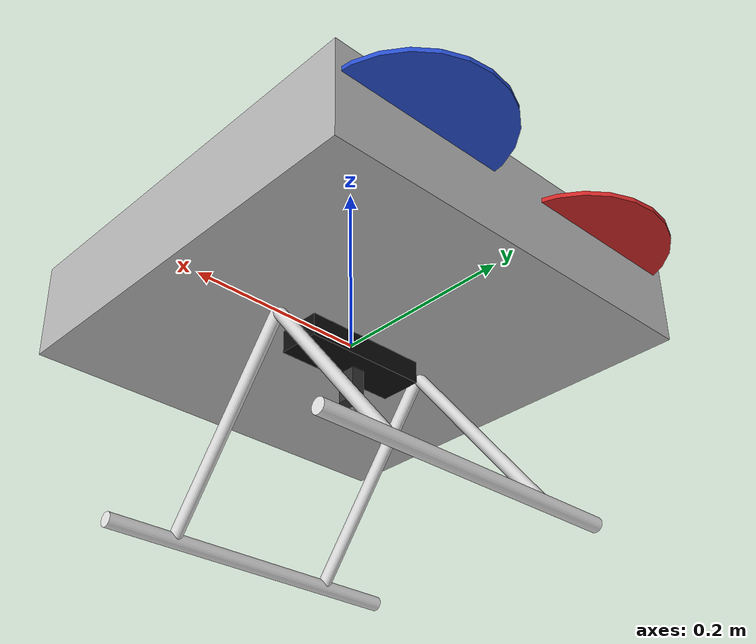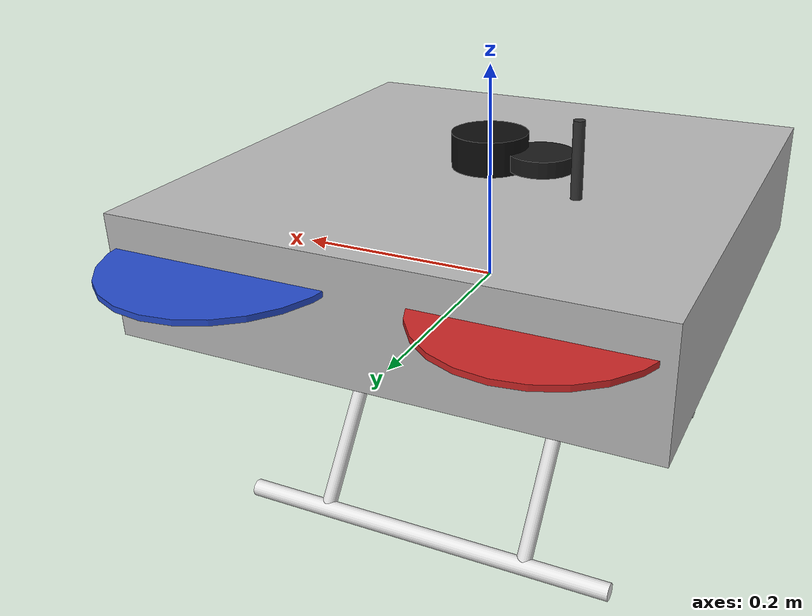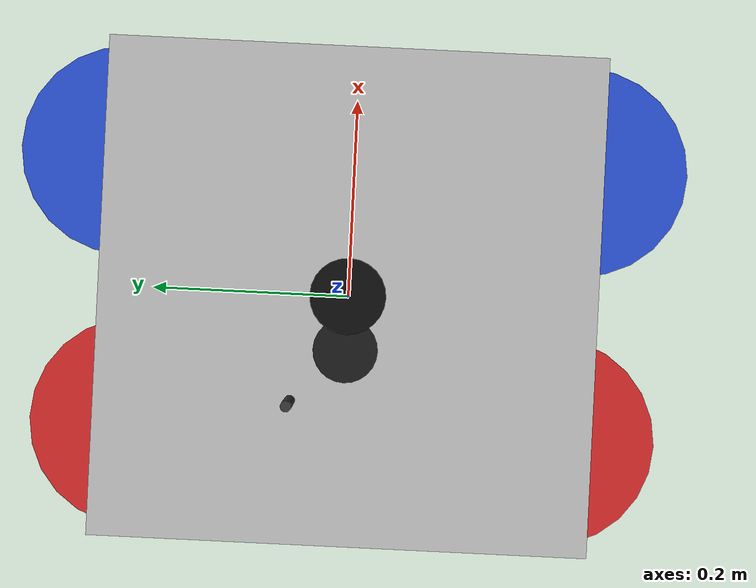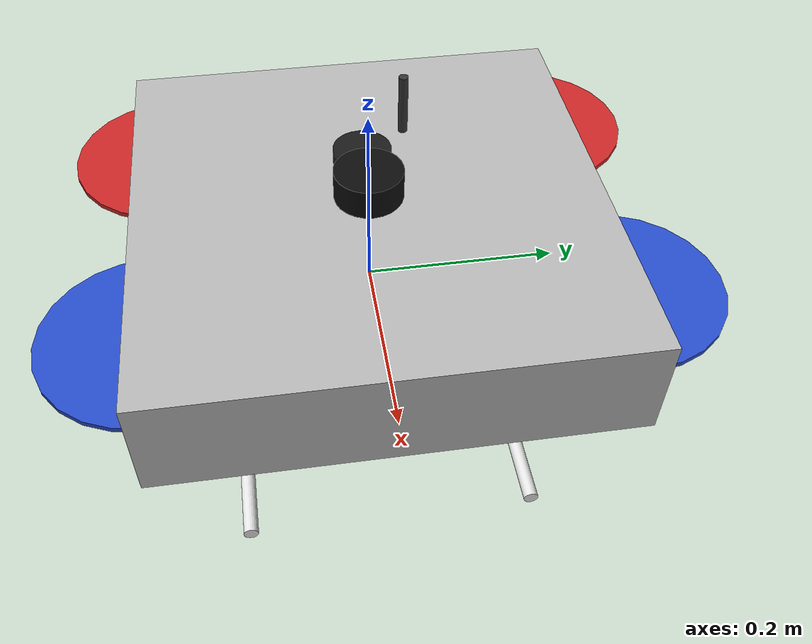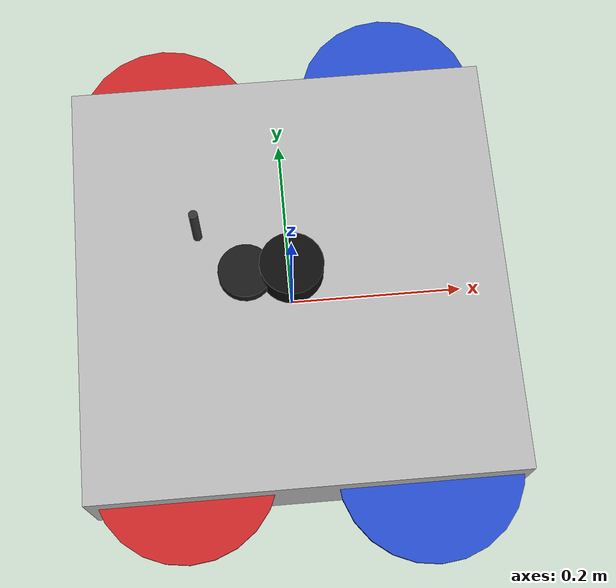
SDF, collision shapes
<?xml version="1.0" ?>
<sdf version="1.9">
  <model name="yelpence_f450">
    <include>
      <uri>https://fuel.gazebosim.org/1.0/OpenRobotics/models/X3 UAV/4</uri>
      <name>platform</name>

      <!-- Motor 0: Front-Right, CCW – Emax MT2213 935KV + 8045 -->
      <plugin filename="gz-sim-multicopter-motor-model-system"
              name="gz::sim::systems::MulticopterMotorModel">
        <robotNamespace>yelpence_f450_0</robotNamespace>
        <jointName>X3/rotor_0_joint</jointName>
        <linkName>X3/rotor_0</linkName>
        <turningDirection>ccw</turningDirection>
        <timeConstantUp>0.0125</timeConstantUp>
        <timeConstantDown>0.025</timeConstantDown>
        <maxRotVelocity>1500.0</maxRotVelocity>
        <motorConstant>1.19e-05</motorConstant>
        <momentConstant>0.016</momentConstant>
        <commandSubTopic>command/motor_speed</commandSubTopic>
        <motorNumber>0</motorNumber>
        <rotorDragCoefficient>8.06428e-05</rotorDragCoefficient>
        <rollingMomentCoefficient>1e-06</rollingMomentCoefficient>
        <motorSpeedPubTopic>motor_speed/0</motorSpeedPubTopic>
        <rotorVelocitySlowdownSim>10</rotorVelocitySlowdownSim>
        <motorType>velocity</motorType>
      </plugin>

      <!-- Motor 1: Back-Left, CW – Emax MT2213 935KV + 8045 -->
      <plugin filename="gz-sim-multicopter-motor-model-system"
              name="gz::sim::systems::MulticopterMotorModel">
        <robotNamespace>yelpence_f450_0</robotNamespace>
        <jointName>X3/rotor_1_joint</jointName>
        <linkName>X3/rotor_1</linkName>
        <turningDirection>ccw</turningDirection>
        <timeConstantUp>0.0125</timeConstantUp>
        <timeConstantDown>0.025</timeConstantDown>
        <maxRotVelocity>1500.0</maxRotVelocity>
        <motorConstant>1.19e-05</motorConstant>
        <momentConstant>0.016</momentConstant>
        <commandSubTopic>command/motor_speed</commandSubTopic>
        <motorNumber>1</motorNumber>
        <rotorDragCoefficient>8.06428e-05</rotorDragCoefficient>
        <rollingMomentCoefficient>1e-06</rollingMomentCoefficient>
        <motorSpeedPubTopic>motor_speed/1</motorSpeedPubTopic>
        <rotorVelocitySlowdownSim>10</rotorVelocitySlowdownSim>
        <motorType>velocity</motorType>
      </plugin>

      <!-- Motor 2: Front-Left, CW – Emax MT2213 935KV + 8045 -->
      <plugin filename="gz-sim-multicopter-motor-model-system"
              name="gz::sim::systems::MulticopterMotorModel">
        <robotNamespace>yelpence_f450_0</robotNamespace>
        <jointName>X3/rotor_2_joint</jointName>
        <linkName>X3/rotor_2</linkName>
        <turningDirection>cw</turningDirection>
        <timeConstantUp>0.0125</timeConstantUp>
        <timeConstantDown>0.025</timeConstantDown>
        <maxRotVelocity>1500.0</maxRotVelocity>
        <motorConstant>1.19e-05</motorConstant>
        <momentConstant>0.016</momentConstant>
        <commandSubTopic>command/motor_speed</commandSubTopic>
        <motorNumber>2</motorNumber>
        <rotorDragCoefficient>8.06428e-05</rotorDragCoefficient>
        <rollingMomentCoefficient>1e-06</rollingMomentCoefficient>
        <motorSpeedPubTopic>motor_speed/2</motorSpeedPubTopic>
        <rotorVelocitySlowdownSim>10</rotorVelocitySlowdownSim>
        <motorType>velocity</motorType>
      </plugin>

      <!-- Motor 3: Back-Right, CCW – Emax MT2213 935KV + 8045 -->
      <plugin filename="gz-sim-multicopter-motor-model-system"
              name="gz::sim::systems::MulticopterMotorModel">
        <robotNamespace>yelpence_f450_0</robotNamespace>
        <jointName>X3/rotor_3_joint</jointName>
        <linkName>X3/rotor_3</linkName>
        <turningDirection>cw</turningDirection>
        <timeConstantUp>0.0125</timeConstantUp>
        <timeConstantDown>0.025</timeConstantDown>
        <maxRotVelocity>1500.0</maxRotVelocity>
        <motorConstant>1.19e-05</motorConstant>
        <momentConstant>0.016</momentConstant>
        <commandSubTopic>command/motor_speed</commandSubTopic>
        <motorNumber>3</motorNumber>
        <rotorDragCoefficient>8.06428e-05</rotorDragCoefficient>
        <rollingMomentCoefficient>1e-06</rollingMomentCoefficient>
        <motorSpeedPubTopic>motor_speed/3</motorSpeedPubTopic>
        <rotorVelocitySlowdownSim>10</rotorVelocitySlowdownSim>
        <motorType>velocity</motorType>
      </plugin>

      <!-- Gazebo Velocity Controller KALDIRILDI.
           Motorlar, PX4 SITL MAVLink eklentisi tarafından
           orijinal gazebo topic'lerine doğrudan hız komutları gönderilerek sürülecektir. -->

      <plugin filename="gz-sim-odometry-publisher-system"
              name="gz::sim::systems::OdometryPublisher">
        <dimensions>3</dimensions>
        <odom_topic>ground_truth/odom</odom_topic>
      </plugin>
    </include>

    <!-- ──────────────────────────────────────────────
         PX4 ESSENTIAL SENSORS (Baro, Mag, IMU, GPS)
         ────────────────────────────────────────────── -->
    <link name="base_link">
      <pose>0 0 0.05 0 0 0</pose>
      <inertial>
        <mass>0.05</mass>
        <inertia>
          <ixx>0.0001</ixx><ixy>0</ixy><ixz>0</ixz>
          <iyy>0.0001</iyy><iyz>0</iyz><izz>0.0001</izz>
        </inertia>
      </inertial>
      <sensor name="air_pressure_sensor" type="air_pressure">
        <gz_frame_id>base_link</gz_frame_id>
        <always_on>1</always_on>
        <update_rate>50</update_rate>
        <air_pressure>
          <pressure>
            <noise type="gaussian">
              <mean>0</mean>
              <stddev>3</stddev>
            </noise>
          </pressure>
        </air_pressure>
      </sensor>
      <sensor name="magnetometer_sensor" type="magnetometer">
        <gz_frame_id>base_link</gz_frame_id>
        <always_on>1</always_on>
        <update_rate>100</update_rate>
        <magnetometer>
          <x><noise type="gaussian"><stddev>0.0001</stddev></noise></x>
          <y><noise type="gaussian"><stddev>0.0001</stddev></noise></y>
          <z><noise type="gaussian"><stddev>0.0001</stddev></noise></z>
        </magnetometer>
      </sensor>
      <sensor name="imu_sensor" type="imu">
        <gz_frame_id>base_link</gz_frame_id>
        <always_on>1</always_on>
        <update_rate>250</update_rate>
        <imu>
          <angular_velocity>
            <x><noise type="gaussian"><mean>0.0</mean><stddev>0.0008726646</stddev></noise></x>
            <y><noise type="gaussian"><mean>0.0</mean><stddev>0.0008726646</stddev></noise></y>
            <z><noise type="gaussian"><mean>0.0</mean><stddev>0.0008726646</stddev></noise></z>
          </angular_velocity>
          <linear_acceleration>
            <x><noise type="gaussian"><mean>0.0</mean><stddev>0.00637</stddev></noise></x>
            <y><noise type="gaussian"><mean>0.0</mean><stddev>0.00637</stddev></noise></y>
            <z><noise type="gaussian"><mean>0.0</mean><stddev>0.00686</stddev></noise></z>
          </linear_acceleration>
        </imu>
      </sensor>
      <sensor name="navsat_sensor" type="navsat">
        <gz_frame_id>base_link</gz_frame_id>
        <always_on>1</always_on>
        <update_rate>30</update_rate>
      </sensor>
    </link>
    <joint name="fcu_joint" type="fixed">
      <parent>platform::X3/base_link</parent>
      <child>base_link</child>
    </joint>

    <!-- ──────────────────────────────────────────────
         yELPENCE CUSTOM HARDWARE
         ────────────────────────────────────────────── -->

    <!-- 1. RPLidar A1 (Top Center) -->
    <link name="lidar_link">
      <pose>0 0 0.12 0 0 0</pose>
      <inertial>
        <mass>0.170</mass>
        <inertia>
          <ixx>0.0001</ixx><ixy>0</ixy><ixz>0</ixz>
          <iyy>0.0001</iyy><iyz>0</iyz><izz>0.0001</izz>
        </inertia>
      </inertial>
      <visual name="lidar_visual">
        <geometry><cylinder><radius>0.035</radius><length>0.04</length></cylinder></geometry>
        <material><ambient>0.05 0.05 0.05 1</ambient><diffuse>0.05 0.05 0.05 1</diffuse></material>
      </visual>
      <visual name="lidar_top">
         <pose>0 0 0.022 0 0 0</pose>
         <geometry><cylinder><radius>0.035</radius><length>0.005</length></cylinder></geometry>
         <material><ambient>0 0 1 1</ambient><diffuse>0 0 0.8 1</diffuse></material>
      </visual>
      <collision name="lidar_collision">
        <geometry><cylinder><radius>0.035</radius><length>0.04</length></cylinder></geometry>
      </collision>
      <sensor name="lidar" type="gpu_ray">
        <pose>0 0 0 0 0 0</pose>
        <topic>lidar</topic>
        <update_rate>10</update_rate>
        <ray>
          <scan>
            <horizontal>
              <samples>360</samples>
              <resolution>1</resolution>
              <min_angle>-3.14159</min_angle>
              <max_angle>3.14159</max_angle>
            </horizontal>
          </scan>
          <range><min>0.15</min><max>12.0</max><resolution>0.01</resolution></range>
        </ray>
        <always_on>1</always_on>
        <visualize>true</visualize>
      </sensor>
    </link>
     <!-- Using scoped name platform::X3/base_link -->
    <joint name="lidar_joint" type="fixed">
      <parent>platform::X3/base_link</parent>
      <child>lidar_link</child>
    </joint>

    <!-- 2. RealSense D435i (Front) -->
    <link name="camera_link">
      <pose>0.1 0 0.05 0 0 0</pose>
      <inertial>
        <mass>0.072</mass>
        <inertia>
          <ixx>0.001</ixx><ixy>0</ixy><ixz>0</ixz>
          <iyy>0.001</iyy><iyz>0</iyz><izz>0.001</izz>
        </inertia>
      </inertial>
      <visual name="camera_visual">
        <geometry><box><size>0.025 0.090 0.025</size></box></geometry>
        <material><ambient>0.8 0.8 0.8 1</ambient><diffuse>0.8 0.8 0.8 1</diffuse></material>
      </visual>
      <visual name="lens_l">
         <pose>0.013 0.02 0 0 1.57 0</pose>
         <geometry><cylinder><radius>0.008</radius><length>0.005</length></cylinder></geometry>
         <material><ambient>0 0 0 1</ambient><diffuse>0 0 0 1</diffuse></material>
      </visual>
      <collision name="camera_collision">
        <geometry><box><size>0.025 0.090 0.025</size></box></geometry>
      </collision>
      <sensor name="camera" type="rgbd_camera">
        <topic>camera</topic>
        <update_rate>30</update_rate>
        <camera>
          <horizontal_fov>1.50098</horizontal_fov>
          <image><width>640</width><height>480</height><format>R8G8B8</format></image>
          <clip><near>0.1</near><far>20.0</far></clip>
        </camera>
        <always_on>1</always_on>
        <visualize>true</visualize>
      </sensor>
    </link>
    <joint name="camera_joint" type="fixed">
      <parent>platform::X3/base_link</parent>
      <child>camera_link</child>
    </joint>

    <!-- 3. Here3 GPS (Back Top) -->
    <link name="gps_link">
      <pose>-0.05 0 0.12 0 0 0</pose>
      <inertial>
        <mass>0.050</mass>
        <inertia>
          <ixx>0.00002</ixx><ixy>0</ixy><ixz>0</ixz>
          <iyy>0.00002</iyy><iyz>0</iyz><izz>0.00002</izz>
        </inertia>
      </inertial>
      <visual name="gps_visual">
        <geometry><cylinder><radius>0.03</radius><length>0.015</length></cylinder></geometry>
        <material><ambient>0.1 0.1 0.1 1</ambient><diffuse>0.1 0.1 0.1 1</diffuse></material>
      </visual>
      <visual name="led_ring">
        <pose>0 0 0.008 0 0 0</pose>
        <geometry><cylinder><radius>0.025</radius><length>0.001</length></cylinder></geometry>
        <material><ambient>0 1 0 1</ambient><diffuse>0 1 0 1</diffuse><emissive>0 1 0 1</emissive></material>
      </visual>
      <collision name="gps_collision">
        <geometry><cylinder><radius>0.03</radius><length>0.015</length></cylinder></geometry>
      </collision>
      <sensor name="gps" type="navsat">
        <topic>gps/fix</topic>
        <update_rate>5</update_rate>
        <always_on>1</always_on>
      </sensor>
      <sensor name="magnetometer" type="magnetometer">
        <always_on>1</always_on>
        <update_rate>50</update_rate>
        <topic>mag</topic>
      </sensor>
    </link>
    <joint name="gps_joint" type="fixed">
      <parent>platform::X3/base_link</parent>
      <child>gps_link</child>
    </joint>

    <!-- 4. Flight Controller -->
    <link name="fc_link">
      <pose>0 0 0.02 0 0 0</pose>
      <inertial>
        <mass>0.075</mass>
        <inertia>
          <ixx>0.00005</ixx><ixy>0</ixy><ixz>0</ixz>
          <iyy>0.00005</iyy><iyz>0</iyz><izz>0.00005</izz>
        </inertia>
      </inertial>
      <visual name="fc_visual">
        <geometry><box><size>0.038 0.038 0.022</size></box></geometry>
        <material><ambient>1 0.5 0 1</ambient><diffuse>1 0.5 0 1</diffuse></material>
      </visual>
      <collision name="fc_collision">
        <geometry><box><size>0.038 0.038 0.022</size></box></geometry>
      </collision>
      <sensor name="imu_sensor" type="imu">
        <always_on>1</always_on>
        <update_rate>100</update_rate>
        <visualize>true</visualize>
        <topic>imu</topic>
      </sensor>
    </link>
    <joint name="fc_joint" type="fixed">
      <parent>platform::X3/base_link</parent>
      <child>fc_link</child>
    </joint>

    <!-- 5. Battery – 14.8V 4S LiPo 5200mAh 45C (THK) -->
    <!-- Dimensions: 145x48x34mm, Weight: ~490g -->
    <!-- Pose: frame alt yüzeyi (~z=-0.020) - batarya yarı yüksekliği (0.017) = -0.037 -->
    <!-- Batarya gövdeye dayalı, boşluksuz -->
    <link name="battery_link">
      <pose>0 0 -0.010 0 0 0</pose>
      <inertial>
        <!-- 490g measured, mounted under center plate -->
        <mass>0.490</mass>
        <inertia>
          <!-- Box inertia: m*(y²+z²)/12 etc. for 145x48x34mm -->
          <ixx>0.000553</ixx><ixy>0</ixy><ixz>0</ixz>
          <iyy>0.001448</iyy><iyz>0</iyz>
          <izz>0.001757</izz>
        </inertia>
      </inertial>
      <visual name="battery_visual">
        <!-- 145mm(L) x 48mm(W) x 34mm(H) -->
        <geometry><box><size>0.145 0.048 0.034</size></box></geometry>
        <material><ambient>0 0 0 1</ambient><diffuse>0.05 0.05 0.05 1</diffuse></material>
      </visual>
      <collision name="battery_collision">
        <geometry><box><size>0.145 0.048 0.034</size></box></geometry>
      </collision>
    </link>
    <joint name="battery_joint" type="fixed">
      <parent>platform::X3/base_link</parent>
      <child>battery_link</child>
    </joint>

    <!-- ── SOL SKID TÜPÜ (y = +0.155m, yere değen yatay tüp) ── -->
    <link name="skid_left_link">
      <!-- merkez: ön-arka ortası, solda, zemin seviyesinden ~200mm yukarı -->
      <pose>0 0.155 -0.200 0 0 0</pose>
      <inertial>
        <mass>0.017</mass>
        <inertia><ixx>0.000002</ixx><ixy>0</ixy><ixz>0</ixz><iyy>0.000190</iyy><iyz>0</iyz><izz>0.000190</izz></inertia>
      </inertial>
      <!-- Ana yatay tüp: 360mm uzun, ön-arka yönünde (X ekseni) -->
      <visual name="skid_left_tube">
        <pose>0 0 0 0 1.5707 0</pose>
        <geometry><cylinder><radius>0.008</radius><length>0.360</length></cylinder></geometry>
        <material><ambient>0.85 0.85 0.85 1</ambient><diffuse>0.90 0.90 0.90 1</diffuse><specular>0.3 0.3 0.3 1</specular></material>
      </visual>
      <!-- Ön uç kapağı -->
      <visual name="skid_left_cap_front">
        <pose>0.180 0 0 0 1.5707 0</pose>
        <geometry><sphere><radius>0.008</radius></sphere></geometry>
        <material><ambient>0.85 0.85 0.85 1</ambient><diffuse>0.90 0.90 0.90 1</diffuse></material>
      </visual>
      <!-- Arka uç kapağı -->
      <visual name="skid_left_cap_back">
        <pose>-0.180 0 0 0 1.5707 0</pose>
        <geometry><sphere><radius>0.008</radius></sphere></geometry>
        <material><ambient>0.85 0.85 0.85 1</ambient><diffuse>0.90 0.90 0.90 1</diffuse></material>
      </visual>
      <collision name="skid_left_col">
        <pose>0 0 0 0 1.5707 0</pose>
        <geometry><cylinder><radius>0.008</radius><length>0.360</length></cylinder></geometry>
      </collision>
    </link>
    <joint name="skid_left_joint" type="fixed"><parent>platform::X3/base_link</parent><child>skid_left_link</child></joint>

    <!-- ── SAĞ SKID TÜPÜ (y = -0.155m) ── -->
    <link name="skid_right_link">
      <pose>0 -0.155 -0.200 0 0 0</pose>
      <inertial>
        <mass>0.017</mass>
        <inertia><ixx>0.000002</ixx><ixy>0</ixy><ixz>0</ixz><iyy>0.000190</iyy><iyz>0</iyz><izz>0.000190</izz></inertia>
      </inertial>
      <visual name="skid_right_tube">
        <pose>0 0 0 0 1.5707 0</pose>
        <geometry><cylinder><radius>0.008</radius><length>0.360</length></cylinder></geometry>
        <material><ambient>0.85 0.85 0.85 1</ambient><diffuse>0.90 0.90 0.90 1</diffuse><specular>0.3 0.3 0.3 1</specular></material>
      </visual>
      <visual name="skid_right_cap_front">
        <pose>0.180 0 0 0 1.5707 0</pose>
        <geometry><sphere><radius>0.008</radius></sphere></geometry>
        <material><ambient>0.85 0.85 0.85 1</ambient><diffuse>0.90 0.90 0.90 1</diffuse></material>
      </visual>
      <visual name="skid_right_cap_back">
        <pose>-0.180 0 0 0 1.5707 0</pose>
        <geometry><sphere><radius>0.008</radius></sphere></geometry>
        <material><ambient>0.85 0.85 0.85 1</ambient><diffuse>0.90 0.90 0.90 1</diffuse></material>
      </visual>
      <collision name="skid_right_col">
        <pose>0 0 0 0 1.5707 0</pose>
        <geometry><cylinder><radius>0.008</radius><length>0.360</length></cylinder></geometry>
      </collision>
    </link>
    <joint name="skid_right_joint" type="fixed"><parent>platform::X3/base_link</parent><child>skid_right_link</child></joint>

    <!-- Ön-Sol bağlantı kolu (frame → sol skid, ön taraf) -->
    <link name="strut_fl_link">
      <!-- Kolun orta noktası: ön-sol köşe ile skid arası -->
      <pose>0.100 0.0775 -0.100 0.660 0 0</pose>
      <inertial>
        <mass>0.009</mass>
        <inertia><ixx>0.000001</ixx><ixy>0</ixy><ixz>0</ixz><iyy>0.000045</iyy><iyz>0</iyz><izz>0.000045</izz></inertia>
      </inertial>
      <visual name="strut_fl_v">
        <geometry><cylinder><radius>0.007</radius><length>0.255</length></cylinder></geometry>
        <material><ambient>0.80 0.80 0.80 1</ambient><diffuse>0.85 0.85 0.85 1</diffuse></material>
      </visual>
      <collision name="strut_fl_col">
        <geometry><cylinder><radius>0.007</radius><length>0.255</length></cylinder></geometry>
      </collision>
    </link>
    <joint name="strut_fl_joint" type="fixed"><parent>platform::X3/base_link</parent><child>strut_fl_link</child></joint>

    <!-- Ön-Sağ bağlantı kolu -->
    <link name="strut_fr_link">
      <pose>0.100 -0.0775 -0.100 -0.660 0 0</pose>
      <inertial>
        <mass>0.009</mass>
        <inertia><ixx>0.000001</ixx><ixy>0</ixy><ixz>0</ixz><iyy>0.000045</iyy><iyz>0</iyz><izz>0.000045</izz></inertia>
      </inertial>
      <visual name="strut_fr_v">
        <geometry><cylinder><radius>0.007</radius><length>0.255</length></cylinder></geometry>
        <material><ambient>0.80 0.80 0.80 1</ambient><diffuse>0.85 0.85 0.85 1</diffuse></material>
      </visual>
      <collision name="strut_fr_col">
        <geometry><cylinder><radius>0.007</radius><length>0.255</length></cylinder></geometry>
      </collision>
    </link>
    <joint name="strut_fr_joint" type="fixed"><parent>platform::X3/base_link</parent><child>strut_fr_link</child></joint>

    <!-- Arka-Sol bağlantı kolu -->
    <link name="strut_bl_link">
      <pose>-0.100 0.0775 -0.100 0.660 0 0</pose>
      <inertial>
        <mass>0.009</mass>
        <inertia><ixx>0.000001</ixx><ixy>0</ixy><ixz>0</ixz><iyy>0.000045</iyy><iyz>0</iyz><izz>0.000045</izz></inertia>
      </inertial>
      <visual name="strut_bl_v">
        <geometry><cylinder><radius>0.007</radius><length>0.255</length></cylinder></geometry>
        <material><ambient>0.80 0.80 0.80 1</ambient><diffuse>0.85 0.85 0.85 1</diffuse></material>
      </visual>
      <collision name="strut_bl_col">
        <geometry><cylinder><radius>0.007</radius><length>0.255</length></cylinder></geometry>
      </collision>
    </link>
    <joint name="strut_bl_joint" type="fixed"><parent>platform::X3/base_link</parent><child>strut_bl_link</child></joint>

    <!-- Arka-Sağ bağlantı kolu -->
    <link name="strut_br_link">
      <pose>-0.100 -0.0775 -0.100 -0.660 0 0</pose>
      <inertial>
        <mass>0.009</mass>
        <inertia><ixx>0.000001</ixx><ixy>0</ixy><ixz>0</ixz><iyy>0.000045</iyy><iyz>0</iyz><izz>0.000045</izz></inertia>
      </inertial>
      <visual name="strut_br_v">
        <geometry><cylinder><radius>0.007</radius><length>0.255</length></cylinder></geometry>
        <material><ambient>0.80 0.80 0.80 1</ambient><diffuse>0.85 0.85 0.85 1</diffuse></material>
      </visual>
      <collision name="strut_br_col">
        <geometry><cylinder><radius>0.007</radius><length>0.255</length></cylinder></geometry>
      </collision>
    </link>
    <joint name="strut_br_joint" type="fixed"><parent>platform::X3/base_link</parent><child>strut_br_link</child></joint>

    <!-- 6. Telemetry -->
    <link name="telemetry_link">
      <pose>-0.1 0.05 0.1 0 0 0</pose>
      <inertial>
        <mass>0.030</mass>
        <inertia>
          <ixx>0.00001</ixx><ixy>0</ixy><ixz>0</ixz>
          <iyy>0.00001</iyy><iyz>0</iyz><izz>0.00001</izz>
        </inertia>
      </inertial>
      <visual name="antenna_visual">
        <geometry><cylinder><radius>0.005</radius><length>0.15</length></cylinder></geometry>
        <material><ambient>0.2 0.2 0.2 1</ambient><diffuse>0.2 0.2 0.2 1</diffuse></material>
      </visual>
      <collision name="telemetry_collision">
        <geometry><cylinder><radius>0.005</radius><length>0.15</length></cylinder></geometry>
      </collision>
    </link>
    <joint name="telemetry_joint" type="fixed">
      <parent>platform::X3/base_link</parent>
      <child>telemetry_link</child>
    </joint>

    <!-- 7. TF-Luna Lidar (Downward, Landing Control) -->
    <link name="tf_luna_link">
      <pose>0 0 -0.05 0 1.5707 0</pose>
      <inertial>
        <mass>0.005</mass>
        <inertia><ixx>0.000001</ixx><ixy>0</ixy><ixz>0</ixz><iyy>0.000001</iyy><iyz>0</iyz><izz>0.000001</izz></inertia>
      </inertial>
      <visual name="tfluna_visual">
        <geometry><box><size>0.035 0.021 0.015</size></box></geometry>
        <material><ambient>0.2 0.2 0.2 1</ambient><diffuse>0.2 0.2 0.2 1</diffuse></material>
      </visual>
      <collision name="tfluna_collision">
        <geometry><box><size>0.035 0.021 0.015</size></box></geometry>
      </collision>
      <sensor name="tf_luna" type="gpu_ray">
        <pose>0 0 0 0 0 0</pose>
        <topic>tfluna/range</topic>
        <update_rate>100</update_rate>
        <ray>
          <scan>
            <horizontal><samples>1</samples><resolution>1</resolution><min_angle>0</min_angle><max_angle>0</max_angle></horizontal>
          </scan>
          <range><min>0.2</min><max>8.0</max><resolution>0.01</resolution></range>
          <noise><type>gaussian</type><mean>0.0</mean><stddev>0.02</stddev></noise>
        </ray>
        <always_on>1</always_on>
        <visualize>true</visualize>
      </sensor>
    </link>
    <joint name="tf_luna_joint" type="fixed">
      <parent>platform::X3/base_link</parent>
      <child>tf_luna_link</child>
    </joint>

    <!-- 8. TOF400C VL53L1X (Front) -->
    <link name="tof_front_link">
      <pose>0.15 0 0.02 0 0 0</pose>
      <inertial>
        <mass>0.005</mass>
        <inertia><ixx>0.000001</ixx><ixy>0</ixy><ixz>0</ixz><iyy>0.000001</iyy><iyz>0</iyz><izz>0.000001</izz></inertia>
      </inertial>
      <visual name="toffront_vi"><geometry><box><size>0.01 0.015 0.005</size></box></geometry></visual>
      <collision name="toffront_col"><geometry><box><size>0.01 0.015 0.005</size></box></geometry></collision>
      <sensor name="tof_front" type="gpu_ray">
        <topic>tof/front</topic>
        <update_rate>50</update_rate>
        <ray>
          <scan>
            <horizontal><samples>10</samples><resolution>1</resolution><min_angle>-0.2356</min_angle><max_angle>0.2356</max_angle></horizontal>
            <vertical><samples>10</samples><resolution>1</resolution><min_angle>-0.2356</min_angle><max_angle>0.2356</max_angle></vertical>
          </scan>
          <range><min>0.04</min><max>4.0</max><resolution>0.005</resolution></range>
          <noise><type>gaussian</type><mean>0.0</mean><stddev>0.01</stddev></noise>
        </ray>
        <always_on>1</always_on>
        <visualize>true</visualize>
      </sensor>
    </link>
    <joint name="tof_front_joint" type="fixed"><parent>platform::X3/base_link</parent><child>tof_front_link</child></joint>

    <!-- 9. TOF400C VL53L1X (Back) -->
    <link name="tof_back_link">
      <pose>-0.15 0 0.02 0 0 3.14159</pose>
      <inertial>
        <mass>0.005</mass>
        <inertia><ixx>0.000001</ixx><ixy>0</ixy><ixz>0</ixz><iyy>0.000001</iyy><iyz>0</iyz><izz>0.000001</izz></inertia>
      </inertial>
      <visual name="tofback_vi"><geometry><box><size>0.01 0.015 0.005</size></box></geometry></visual>
      <collision name="tofback_col"><geometry><box><size>0.01 0.015 0.005</size></box></geometry></collision>
      <sensor name="tof_back" type="gpu_ray">
        <topic>tof/back</topic>
        <update_rate>50</update_rate>
        <ray>
          <scan>
            <horizontal><samples>10</samples><resolution>1</resolution><min_angle>-0.2356</min_angle><max_angle>0.2356</max_angle></horizontal>
            <vertical><samples>10</samples><resolution>1</resolution><min_angle>-0.2356</min_angle><max_angle>0.2356</max_angle></vertical>
          </scan>
          <range><min>0.04</min><max>4.0</max><resolution>0.005</resolution></range>
          <noise><type>gaussian</type><mean>0.0</mean><stddev>0.01</stddev></noise>
        </ray>
        <always_on>1</always_on>
        <visualize>true</visualize>
      </sensor>
    </link>
    <joint name="tof_back_joint" type="fixed"><parent>platform::X3/base_link</parent><child>tof_back_link</child></joint>

    <!-- 10. TOF400C VL53L1X (Right) -->
    <link name="tof_right_link">
      <pose>0 -0.15 0.02 0 0 -1.57079</pose>
      <inertial>
        <mass>0.005</mass>
        <inertia><ixx>0.000001</ixx><ixy>0</ixy><ixz>0</ixz><iyy>0.000001</iyy><iyz>0</iyz><izz>0.000001</izz></inertia>
      </inertial>
      <visual name="tofright_vi"><geometry><box><size>0.01 0.015 0.005</size></box></geometry></visual>
      <collision name="tofright_col"><geometry><box><size>0.01 0.015 0.005</size></box></geometry></collision>
      <sensor name="tof_right" type="gpu_ray">
        <topic>tof/right</topic>
        <update_rate>50</update_rate>
        <ray>
          <scan>
            <horizontal><samples>10</samples><resolution>1</resolution><min_angle>-0.2356</min_angle><max_angle>0.2356</max_angle></horizontal>
            <vertical><samples>10</samples><resolution>1</resolution><min_angle>-0.2356</min_angle><max_angle>0.2356</max_angle></vertical>
          </scan>
          <range><min>0.04</min><max>4.0</max><resolution>0.005</resolution></range>
          <noise><type>gaussian</type><mean>0.0</mean><stddev>0.01</stddev></noise>
        </ray>
        <always_on>1</always_on>
        <visualize>true</visualize>
      </sensor>
    </link>
    <joint name="tof_right_joint" type="fixed"><parent>platform::X3/base_link</parent><child>tof_right_link</child></joint>

    <!-- 11. TOF400C VL53L1X (Left) -->
    <link name="tof_left_link">
      <pose>0 0.15 0.02 0 0 1.57079</pose>
      <inertial>
        <mass>0.005</mass>
        <inertia><ixx>0.000001</ixx><ixy>0</ixy><ixz>0</ixz><iyy>0.000001</iyy><iyz>0</iyz><izz>0.000001</izz></inertia>
      </inertial>
      <visual name="tofleft_vi"><geometry><box><size>0.01 0.015 0.005</size></box></geometry></visual>
      <collision name="tofleft_col"><geometry><box><size>0.01 0.015 0.005</size></box></geometry></collision>
      <sensor name="tof_left" type="gpu_ray">
        <topic>tof/left</topic>
        <update_rate>50</update_rate>
        <ray>
          <scan>
            <horizontal><samples>10</samples><resolution>1</resolution><min_angle>-0.2356</min_angle><max_angle>0.2356</max_angle></horizontal>
            <vertical><samples>10</samples><resolution>1</resolution><min_angle>-0.2356</min_angle><max_angle>0.2356</max_angle></vertical>
          </scan>
          <range><min>0.04</min><max>4.0</max><resolution>0.005</resolution></range>
          <noise><type>gaussian</type><mean>0.0</mean><stddev>0.01</stddev></noise>
        </ray>
        <always_on>1</always_on>
        <visualize>true</visualize>
      </sensor>
    </link>
    <joint name="tof_left_joint" type="fixed"><parent>platform::X3/base_link</parent><child>tof_left_link</child></joint>

  </model>
</sdf>

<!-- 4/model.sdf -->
<sdf version="1.6">
    <model name="x3">
        <pose>0 0 0.053302 0 0 0</pose>
        <link name="X3/base_link">
            <pose frame="">0 0 0 0 -0 0</pose>
            <inertial>
                <pose frame="">0 0 0 0 -0 0</pose>
                <mass>1.5</mass>
                <inertia>
                    <ixx>0.0347563</ixx>
                    <ixy>0</ixy>
                    <ixz>0</ixz>q
                    <iyy>0.07</iyy>
                    <iyz>0</iyz>
                    <izz>0.0977</izz>
                </inertia>
            </inertial>
            <collision name="X3/base_link_inertia_collision">
                <pose frame="">0 0 0 0 -0 0</pose>
                <geometry>
                    <box>
                        <size>0.47 0.47 0.11</size>
                    </box>
                </geometry>
            </collision>
            <visual name="X3/base_link_inertia_visual">
                <pose frame="">0 0 0 0 -0 0</pose>
                <geometry>
                    <mesh>
                        <scale>1 1 1</scale>
                        <uri>https://fuel.ignitionrobotics.org/1.0/openrobotics/models/x3 uav/4/files/meshes/x3.dae</uri>
                    </mesh>
                </geometry>
            </visual>
            <sensor name="imu_sensor" type="imu">
                <always_on>1</always_on>
                <update_rate>250</update_rate>
                <imu>
                    <enable_orientation>0</enable_orientation>
                    <angular_velocity>
                        <x>
                            <noise type="gaussian">
                                <mean>0</mean>
                                <stddev>0.009</stddev>
                                <bias_mean>0.00075</bias_mean>
                                <bias_stddev>0.005</bias_stddev>
                                <dynamic_bias_stddev>0.00002</dynamic_bias_stddev>
				<dynamic_bias_correlation_time>400.0</dynamic_bias_correlation_time>
				<precision>0.00025</precision>
                            </noise>
                        </x>
                        <y>
                            <noise type="gaussian">
                                <mean>0</mean>
                                <stddev>0.009</stddev>
                                <bias_mean>0.00075</bias_mean>
                                <bias_stddev>0.005</bias_stddev>
                                <dynamic_bias_stddev>0.00002</dynamic_bias_stddev>
				<dynamic_bias_correlation_time>400.0</dynamic_bias_correlation_time>
				<precision>0.00025</precision>
                            </noise>
                        </y>
                        <z>
                            <noise type="gaussian">
                                <mean>0</mean>
                                <stddev>0.009</stddev>
                                <bias_mean>0.00075</bias_mean>
                                <bias_stddev>0.005</bias_stddev>
                                <dynamic_bias_stddev>0.00002</dynamic_bias_stddev>
				<dynamic_bias_correlation_time>400.0</dynamic_bias_correlation_time>
				<precision>0.00025</precision>
                            </noise>
                        </z>
                    </angular_velocity>
                    <linear_acceleration>
                        <x>
                            <noise type="gaussian">
                                <mean>0</mean>
                                <stddev>0.021</stddev>
                                <bias_mean>0.05</bias_mean>
                                <bias_stddev>0.0075</bias_stddev>
                                <dynamic_bias_stddev>0.000375</dynamic_bias_stddev>
				<dynamic_bias_correlation_time>175.0</dynamic_bias_correlation_time>
				<precision>0.005</precision>
                            </noise>
                        </x>
                        <y>
                            <noise type="gaussian">
                                <mean>0</mean>
                                <stddev>0.021</stddev>
                                <bias_mean>0.05</bias_mean>
                                <bias_stddev>0.0075</bias_stddev>
                                <dynamic_bias_stddev>0.000375</dynamic_bias_stddev>
				<dynamic_bias_correlation_time>175.0</dynamic_bias_correlation_time>
				<precision>0.005</precision>
                            </noise>
                        </y>
                        <z>
                            <noise type="gaussian">
                                <mean>0</mean>
                                <stddev>0.021</stddev>
                                <bias_mean>0.05</bias_mean>
                                <bias_stddev>0.0075</bias_stddev>
                                <dynamic_bias_stddev>0.000375</dynamic_bias_stddev>
				<dynamic_bias_correlation_time>175.0</dynamic_bias_correlation_time>
				<precision>0.005</precision>
                            </noise>
                        </z>
                    </linear_acceleration>
                </imu>
            </sensor>

            <sensor name="magnetometer" type="magnetometer">
                <always_on>1</always_on>
                <update_rate>20</update_rate>
                <magnetometer>
                    <x>
                        <noise type="gaussian">
                            <mean>0.000000080</mean>
                            <bias_mean>0.000000400</bias_mean>
                        </noise>
                    </x>
                    <y>
                        <noise type="gaussian">
                            <mean>0.000000080</mean>
                            <bias_mean>0.000000400</bias_mean>
                        </noise>
                    </y>
                    <z>
                        <noise type="gaussian">
                            <mean>0.000000080</mean>
                            <bias_mean>0.000000400</bias_mean>
                        </noise>
                    </z>
                </magnetometer>
            </sensor>

            <visual name="camera_visual">
                <pose>0.1 0 0 0 0 0</pose>
                <geometry>
                    <box>
                        <size>0.02 0.02 0.02</size>
                    </box>
                </geometry>
            </visual>

            <sensor name="camera_front" type="rgbd_camera">
                <ignition_frame_id>camera_frame_rgb</ignition_frame_id>
                <pose>0.1 0 0 0 0 0</pose>
                <always_on>1</always_on>
                <update_rate>20</update_rate>
                <camera name="camera_front">
                    <horizontal_fov>1.0472</horizontal_fov>
                    <lens>
                        <intrinsics>
                          <!-- fx = fy = width / ( 2 * tan (hfov / 2 ) ) -->
                          <fx>554.3</fx>
                          <fy>554.3</fy>
                          <!-- cx = ( width + 1 ) / 2 -->
                          <cx>320.5</cx>
                          <!-- cy = ( height + 1 ) / 2 -->
                          <cy>240.5</cy>
                          <s>0</s>
                        </intrinsics>
                    </lens>
                    <distortion>
                        <k1>0.0</k1>
                        <k2>0.0</k2>
                        <k3>0.0</k3>
                        <p1>0.0</p1>
                        <p2>0.0</p2>
                        <center>0.5 0.5</center>
                    </distortion>
                    <image>
                        <width>640</width>
                        <height>480</height>
                        <format>R8G8B8</format>
                    </image>
                    <clip>
                        <near>0.01</near>
                        <far>300</far>
                    </clip>
                    <depth_camera>
                      <clip>
                        <near>0.1</near>
                        <far>10</far>
                      </clip>
                    </depth_camera>
                    <noise>
                        <type>gaussian</type>
                        <mean>0</mean>
                        <stddev>0.007</stddev>
                    </noise>
                </camera>
            </sensor>

            <sensor name='navsat' type='navsat'>
                <always_on>true</always_on>
                <update_rate>20</update_rate>
            </sensor>

        </link>
        <link name="X3/rotor_0">
            <pose frame="">0.13 -0.22 0.023 0 -0 0</pose>
            <inertial>
                <pose frame="">0 0 0 0 -0 0</pose>
                <mass>0.005</mass>
                <inertia>
                    <ixx>9.75e-07</ixx>
                    <ixy>0</ixy>
                    <ixz>0</ixz>
                    <iyy>4.17041e-05</iyy>
                    <iyz>0</iyz>
                    <izz>4.26041e-05</izz>
                </inertia>
            </inertial>
            <collision name="X3/rotor_0_collision">
                <pose frame="">0 0 0 0 -0 0</pose>
                <geometry>
                    <cylinder>
                        <length>0.005</length>
                        <radius>0.1</radius>
                    </cylinder>
                </geometry>
                <surface>
                    <contact>
                        <ode/>
                    </contact>
                    <friction>
                        <ode/>
                    </friction>
                </surface>
            </collision>
            <visual name="X3/rotor_0_visual">
                <pose frame="">0 0 0 0 -0 0</pose>
                <geometry>
                    <mesh>
                        <scale>0.1 0.1 0.1</scale>
                        <uri>https://fuel.ignitionrobotics.org/1.0/openrobotics/models/x3 uav/4/files/meshes/propeller_ccw.dae</uri>
                    </mesh>
                </geometry>
                <material>
                    <script>
                        <name>Gazebo/Blue</name>
                        <uri>file://media/materials/scripts/gazebo.material</uri>
                    </script>
                </material>
            </visual>
            <gravity>1</gravity>
            <velocity_decay/>
        </link>
        <joint name="X3/rotor_0_joint" type="revolute">
            <child>X3/rotor_0</child>
            <parent>X3/base_link</parent>
            <axis>
                <xyz>0 0 1</xyz>
                <limit>
                    <lower>-1e+16</lower>
                    <upper>1e+16</upper>
                </limit>
                <dynamics>
                    <spring_reference>0</spring_reference>
                    <spring_stiffness>0</spring_stiffness>
                </dynamics>
                <use_parent_model_frame>1</use_parent_model_frame>
            </axis>
        </joint>
        <link name="X3/rotor_1">
            <pose frame="">-0.13 0.2 0.023 0 -0 0</pose>
            <inertial>
                <pose frame="">0 0 0 0 -0 0</pose>
                <mass>0.005</mass>
                <inertia>
                    <ixx>9.75e-07</ixx>
                    <ixy>0</ixy>
                    <ixz>0</ixz>
                    <iyy>4.17041e-05</iyy>
                    <iyz>0</iyz>
                    <izz>4.26041e-05</izz>
                </inertia>
            </inertial>
            <collision name="X3/rotor_1_collision">
                <pose frame="">0 0 0 0 -0 0</pose>
                <geometry>
                    <cylinder>
                        <length>0.005</length>
                        <radius>0.1</radius>
                    </cylinder>
                </geometry>
                <surface>
                    <contact>
                        <ode/>
                    </contact>
                    <friction>
                        <ode/>
                    </friction>
                </surface>
            </collision>
            <visual name="X3/rotor_1_visual">
                <pose frame="">0 0 0 0 -0 0</pose>
                <geometry>
                    <mesh>
                        <scale>0.1 0.1 0.1</scale>
                        <uri>https://fuel.ignitionrobotics.org/1.0/openrobotics/models/x3 uav/4/files/meshes/propeller_ccw.dae</uri>
                    </mesh>
                </geometry>
                <material>
                    <script>
                        <name>Gazebo/Red</name>
                        <uri>file://media/materials/scripts/gazebo.material</uri>
                    </script>
                </material>
            </visual>
            <gravity>1</gravity>
            <velocity_decay/>
        </link>
        <joint name="X3/rotor_1_joint" type="revolute">
            <child>X3/rotor_1</child>
            <parent>X3/base_link</parent>
            <axis>
                <xyz>0 0 1</xyz>
                <limit>
                    <lower>-1e+16</lower>
                    <upper>1e+16</upper>
                </limit>
                <dynamics>
                    <spring_reference>0</spring_reference>
                    <spring_stiffness>0</spring_stiffness>
                </dynamics>
                <use_parent_model_frame>1</use_parent_model_frame>
            </axis>
        </joint>
        <link name="X3/rotor_2">
            <pose frame="">0.13 0.22 0.023 0 -0 0</pose>
            <inertial>
                <pose frame="">0 0 0 0 -0 0</pose>
                <mass>0.005</mass>
                <inertia>
                    <ixx>9.75e-07</ixx>
                    <ixy>0</ixy>
                    <ixz>0</ixz>
                    <iyy>4.17041e-05</iyy>
                    <iyz>0</iyz>
                    <izz>4.26041e-05</izz>
                </inertia>
            </inertial>
            <collision name="X3/rotor_2_collision">
                <pose frame="">0 0 0 0 -0 0</pose>
                <geometry>
                    <cylinder>
                        <length>0.005</length>
                        <radius>0.1</radius>
                    </cylinder>
                </geometry>
                <surface>
                    <contact>
                        <ode/>
                    </contact>
                    <friction>
                        <ode/>
                    </friction>
                </surface>
            </collision>
            <visual name="X3/rotor_2_visual">
                <pose frame="">0 0 0 0 -0 0</pose>
                <geometry>
                    <mesh>
                        <scale>0.1 0.1 0.1</scale>
                        <uri>https://fuel.ignitionrobotics.org/1.0/openrobotics/models/x3 uav/4/files/meshes/propeller_cw.dae</uri>
                    </mesh>
                </geometry>
                <material>
                    <script>
                        <name>Gazebo/Blue</name>
                        <uri>file://media/materials/scripts/gazebo.material</uri>
                    </script>
                </material>
            </visual>
            <gravity>1</gravity>
            <velocity_decay/>
        </link>
        <joint name="X3/rotor_2_joint" type="revolute">
            <child>X3/rotor_2</child>
            <parent>X3/base_link</parent>
            <axis>
                <xyz>0 0 1</xyz>
                <limit>
                    <lower>-1e+16</lower>
                    <upper>1e+16</upper>
                </limit>
                <dynamics>
                    <spring_reference>0</spring_reference>
                    <spring_stiffness>0</spring_stiffness>
                </dynamics>
                <use_parent_model_frame>1</use_parent_model_frame>
            </axis>
        </joint>
        <link name="X3/rotor_3">
            <pose frame="">-0.13 -0.2 0.023 0 -0 0</pose>
            <inertial>
                <pose frame="">0 0 0 0 -0 0</pose>
                <mass>0.005</mass>
                <inertia>
                    <ixx>9.75e-07</ixx>
                    <ixy>0</ixy>
                    <ixz>0</ixz>
                    <iyy>4.17041e-05</iyy>
                    <iyz>0</iyz>
                    <izz>4.26041e-05</izz>
                </inertia>
            </inertial>
            <collision name="X3/rotor_3_collision">
                <pose frame="">0 0 0 0 -0 0</pose>
                <geometry>
                    <cylinder>
                        <length>0.005</length>
                        <radius>0.1</radius>
                    </cylinder>
                </geometry>
                <surface>
                    <contact>
                        <ode/>
                    </contact>
                    <friction>
                        <ode/>
                    </friction>
                </surface>
            </collision>
            <visual name="X3/rotor_3_visual">
                <pose frame="">0 0 0 0 -0 0</pose>
                <geometry>
                    <mesh>
                        <scale>0.1 0.1 0.1</scale>
                        <uri>https://fuel.ignitionrobotics.org/1.0/openrobotics/models/x3 uav/4/files/meshes/propeller_cw.dae</uri>
                    </mesh>
                </geometry>
                <material>
                    <script>
                        <name>Gazebo/Red</name>
                        <uri>file://media/materials/scripts/gazebo.material</uri>
                    </script>
                </material>
            </visual>
            <gravity>1</gravity>
            <velocity_decay/>
        </link>
        <joint name="X3/rotor_3_joint" type="revolute">
            <child>X3/rotor_3</child>
            <parent>X3/base_link</parent>
            <axis>
                <xyz>0 0 1</xyz>
                <limit>
                    <lower>-1e+16</lower>
                    <upper>1e+16</upper>
                </limit>
                <dynamics>
                    <spring_reference>0</spring_reference>
                    <spring_stiffness>0</spring_stiffness>
                </dynamics>
                <use_parent_model_frame>1</use_parent_model_frame>
            </axis>
        </joint>
        <plugin name='ignition::gazebo::systems::OdometryPublisher' filename='ignition-gazebo-odometry-publisher-system'>
            <dimensions>3</dimensions>
            <odom_publish_frequency>10.0</odom_publish_frequency>
            <odom_frame>odom</odom_frame>
            <robot_base_frame>x3/X3/base_link</robot_base_frame>
        </plugin>

        <plugin name='ignition::gazebo::systems::JointStatePublisher' filename='ignition-gazebo-joint-state-publisher-system'/>

        <plugin name='ignition::gazebo::systems::PosePublisher' filename='libignition-gazebo-pose-publisher-system.so'>
            <publish_link_pose>false</publish_link_pose>
            <publish_sensor_pose>true</publish_sensor_pose>
            <publish_collision_pose>false</publish_collision_pose>
            <publish_visual_pose>false</publish_visual_pose>
            <publish_nested_model_pose>false</publish_nested_model_pose>
            <publish_model_pose>false</publish_model_pose>
            <use_pose_vector_msg>true</use_pose_vector_msg>
            <static_publisher>false</static_publisher>
            <static_update_frequency>1</static_update_frequency>
        </plugin>

        <plugin
            filename="ignition-gazebo-multicopter-motor-model-system"
            name="ignition::gazebo::systems::MulticopterMotorModel">
            <robotNamespace>X3</robotNamespace>
            <jointName>X3/rotor_0_joint</jointName>
            <linkName>X3/rotor_0</linkName>
            <turningDirection>ccw</turningDirection>
            <timeConstantUp>0.0125</timeConstantUp>
            <timeConstantDown>0.025</timeConstantDown>
            <maxRotVelocity>800.0</maxRotVelocity>
            <motorConstant>8.54858e-06</motorConstant>
            <momentConstant>0.016</momentConstant>
            <commandSubTopic>gazebo/command/motor_speed</commandSubTopic>
            <motorNumber>0</motorNumber>
            <rotorDragCoefficient>8.06428e-05</rotorDragCoefficient>
            <rollingMomentCoefficient>1e-06</rollingMomentCoefficient>
            <motorSpeedPubTopic>motor_speed/0</motorSpeedPubTopic>
            <rotorVelocitySlowdownSim>10</rotorVelocitySlowdownSim>
            <motorType>velocity</motorType>
        </plugin>
        <plugin
            filename="ignition-gazebo-multicopter-motor-model-system"
            name="ignition::gazebo::systems::MulticopterMotorModel">
            <robotNamespace>X3</robotNamespace>
            <jointName>X3/rotor_1_joint</jointName>
            <linkName>X3/rotor_1</linkName>
            <turningDirection>ccw</turningDirection>
            <timeConstantUp>0.0125</timeConstantUp>
            <timeConstantDown>0.025</timeConstantDown>
            <maxRotVelocity>800.0</maxRotVelocity>
            <motorConstant>8.54858e-06</motorConstant>
            <momentConstant>0.016</momentConstant>
            <commandSubTopic>gazebo/command/motor_speed</commandSubTopic>
            <motorNumber>1</motorNumber>
            <rotorDragCoefficient>8.06428e-05</rotorDragCoefficient>
            <rollingMomentCoefficient>1e-06</rollingMomentCoefficient>
            <motorSpeedPubTopic>motor_speed/1</motorSpeedPubTopic>
            <rotorVelocitySlowdownSim>10</rotorVelocitySlowdownSim>
            <motorType>velocity</motorType>
        </plugin>
        <plugin
            filename="ignition-gazebo-multicopter-motor-model-system"
            name="ignition::gazebo::systems::MulticopterMotorModel">
            <robotNamespace>X3</robotNamespace>
            <jointName>X3/rotor_2_joint</jointName>
            <linkName>X3/rotor_2</linkName>
            <turningDirection>cw</turningDirection>
            <timeConstantUp>0.0125</timeConstantUp>
            <timeConstantDown>0.025</timeConstantDown>
            <maxRotVelocity>800.0</maxRotVelocity>
            <motorConstant>8.54858e-06</motorConstant>
            <momentConstant>0.016</momentConstant>
            <commandSubTopic>gazebo/command/motor_speed</commandSubTopic>
            <motorNumber>2</motorNumber>
            <rotorDragCoefficient>8.06428e-05</rotorDragCoefficient>
            <rollingMomentCoefficient>1e-06</rollingMomentCoefficient>
            <motorSpeedPubTopic>motor_speed/2</motorSpeedPubTopic>
            <rotorVelocitySlowdownSim>10</rotorVelocitySlowdownSim>
            <motorType>velocity</motorType>
        </plugin>
        <plugin
            filename="ignition-gazebo-multicopter-motor-model-system"
            name="ignition::gazebo::systems::MulticopterMotorModel">
            <robotNamespace>X3</robotNamespace>
            <jointName>X3/rotor_3_joint</jointName>
            <linkName>X3/rotor_3</linkName>
            <turningDirection>cw</turningDirection>
            <timeConstantUp>0.0125</timeConstantUp>
            <timeConstantDown>0.025</timeConstantDown>
            <maxRotVelocity>800.0</maxRotVelocity>
            <motorConstant>8.54858e-06</motorConstant>
            <momentConstant>0.016</momentConstant>
            <commandSubTopic>gazebo/command/motor_speed</commandSubTopic>
            <motorNumber>3</motorNumber>
            <rotorDragCoefficient>8.06428e-05</rotorDragCoefficient>
            <rollingMomentCoefficient>1e-06</rollingMomentCoefficient>
            <motorSpeedPubTopic>motor_speed/3</motorSpeedPubTopic>
            <rotorVelocitySlowdownSim>10</rotorVelocitySlowdownSim>
            <motorType>velocity</motorType>
        </plugin>
        <plugin
            filename="ignition-gazebo-multicopter-control-system"
            name="ignition::gazebo::systems::MulticopterVelocityControl">
            <robotNamespace>X3</robotNamespace>
            <commandSubTopic>cmd_vel</commandSubTopic>
            <enableSubTopic>enable</enableSubTopic>
            <comLinkName>X3/base_link</comLinkName>
            <velocityGain>2.7 2.7 2.7</velocityGain>
            <attitudeGain>2 3 0.15</attitudeGain>
            <angularRateGain>0.4 0.52 0.18</angularRateGain>
            <maximumLinearAcceleration>2 2 2</maximumLinearAcceleration>

            <rotorConfiguration>
            <rotor>
                <jointName>X3/rotor_0_joint</jointName>
                <forceConstant>8.54858e-06</forceConstant>
                <momentConstant>0.016</momentConstant>
                <direction>1</direction>
            </rotor>
            <rotor>
                <jointName>X3/rotor_1_joint</jointName>
                <forceConstant>8.54858e-06</forceConstant>
                <momentConstant>0.016</momentConstant>
                <direction>1</direction>
            </rotor>
            <rotor>
                <jointName>X3/rotor_2_joint</jointName>
                <forceConstant>8.54858e-06</forceConstant>
                <momentConstant>0.016</momentConstant>
                <direction>-1</direction>
            </rotor>
            <rotor>
                <jointName>X3/rotor_3_joint</jointName>
                <forceConstant>8.54858e-06</forceConstant>
                <momentConstant>0.016</momentConstant>
                <direction>-1</direction>
            </rotor>
            </rotorConfiguration>
        </plugin>
    </model>
</sdf>
